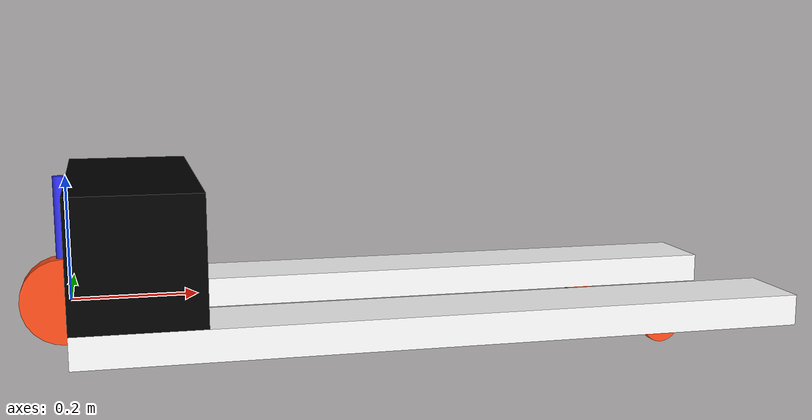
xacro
<?xml version="1.0"?>
<robot xmlns:xacro="http://www.ros.org/wiki/xacro" >

    <xacro:include filename="inertia.xacro"/>

    <material name="white">
        <color rgba="1 1 1 1" />
    </material>

    <material name="orange">
        <color rgba="1 0.3 0.1 1"/>
    </material>

    <material name="blue">
        <color rgba="0.2 0.2 1 1"/>
    </material>

    <material name="black">
        <color rgba="0 0 0 1"/>
    </material>

    <!-- BASE_FOOTPRINT LINK-->
    <joint name="base_footprint_joint" type="fixed">
        <parent link="base_link"/>
        <child link="base_footprint"/>
        <origin xyz="0 0 0" rpy="0  0 0"/>
    </joint>

    <link name="base_footprint"/>

    <!-- Ana Gövde -->
    <link name="base_link">
        <visual>
            <origin xyz="0.1 0 0.1"/>
            <geometry>
                <box size="0.2 0.50 0.2"/>
            </geometry>
            <material name="black"/>
        </visual>
        <collision>
            <origin xyz="0.1 0 0.1"/>
            <geometry>
                <box size="0.2 0.50 0.2"/>
            </geometry>
            <material name="black"/>
        </collision>
        <xacro:inertial_box mass="2.0" x="0.2" y="0.50" z="0.2">
            <origin xyz="0.1 0 0.1" rpy="0 0 0"/>
        </xacro:inertial_box>
    </link>

    <!-- Tekerlekler -->
    <link name="fork_left_wheel">
        <visual>
            <geometry>
                <cylinder radius="0.03" length="0.02"/>
            </geometry>
            <material name="orange"/>
        </visual>
        <collision>
            <geometry>
                <cylinder radius="0.03" length="0.02"/>
            </geometry>
            <material name="orange"/>
        </collision>
        <xacro:inertial_cylinder mass="0.1" length="0.02" radius="0.03">
            <origin xyz="0 0 0" rpy="0 0 0"/>
        </xacro:inertial_cylinder>
    </link>

    <link name="fork_right_wheel">
        <visual>
            <geometry>
                <cylinder radius="0.03" length="0.02"/>
            </geometry>
            <material name="orange"/>
        </visual>
        <collision>
            <geometry>
                <cylinder radius="0.03" length="0.02"/>
            </geometry>
            <material name="orange"/>
        </collision>
        <xacro:inertial_cylinder mass="0.1" length="0.02" radius="0.03">
            <origin xyz="0 0 0" rpy="0 0 0"/>
        </xacro:inertial_cylinder>
    </link>

    <link name="front_wheel">
        <visual>
            <geometry>
                <cylinder radius="0.07" length="0.04"/>
            </geometry>
            <material name="orange"/>
        </visual>
        <collision>
            <geometry>
                <cylinder radius="0.07" length="0.04"/>
            </geometry>
            <material name="orange"/>
        </collision>
        <xacro:inertial_cylinder mass="0.1" length="0.04" radius="0.07">
            <origin xyz="0 0 0" rpy="0 0 0"/>
        </xacro:inertial_cylinder>
    </link>

    <!-- Direksyon Mekanizması -->

    <link name="steering_cylinder">
        <visual>
            <geometry>
                <cylinder radius="0.01" length="0.2"/>
            </geometry>
            <material name="blue"/>
        </visual>
        <collision>
            <geometry>
                <cylinder radius="0.01" length="0.2"/>
            </geometry>
            <material name="blue"/>
        </collision>
        <xacro:inertial_cylinder mass="0.1" length="0.2" radius="0.01">
            <origin xyz="0 0 0" rpy="0 0 0"/>
        </xacro:inertial_cylinder>
    </link>

    <!-- Çatal Mekanizması -->
    <link name="left_fork">
        <visual>
            <origin xyz="0.575 0 0.025"/>
            <geometry>
                <box size="1.15 0.14 0.05"/>
            </geometry>
            <material name="white"/>
        </visual>
        <collision>
            <origin xyz="0.575 0 0.025"/>
            <geometry>
                <box size="1.15 0.14 0.05"/>
            </geometry>
            <material name="white"/>
        </collision>
        <xacro:inertial_box mass="5.0" x="1.14" y="0.14" z="0.05">
            <origin xyz="0.575 0 0.025" rpy="0 0 0"/>
        </xacro:inertial_box>
    </link>

    <link name="right_fork">
        <visual>
            <origin xyz="0.575 0 0.025"/>
            <geometry>
                <box size="1.15 0.14 0.05"/>
            </geometry>
            <material name="white"/>
        </visual>
        <collision>
            <origin xyz="0.575 0 0.025"/>
            <geometry>
                <box size="1.15 0.14 0.05"/>
            </geometry>
            <material name="white"/>
        </collision>
        <xacro:inertial_box mass="5.0" x="1.14" y="0.14" z="0.05">
            <origin xyz="0.575 0 0.025" rpy="0 0 0"/>
        </xacro:inertial_box>
    </link>

    <!-- Bağlantılar -->
    <joint name="fork_left_wheel_joint" type="continuous">
        <parent link="base_link"/>
        <child link="fork_left_wheel"/>
        <origin xyz="0.94 0.18 -0.05" rpy="-${pi/2} 0 0" />
        <axis xyz="0 0 1"/>
    </joint>

    <joint name="fork_right_wheel_joint" type="continuous">
        <parent link="base_link"/>
        <child link="fork_right_wheel"/>
        <origin xyz="0.94 -0.18 -0.05" rpy="-${pi/2} 0 0" />
        <axis xyz="0 0 -1"/>
    </joint>

    <joint name="front_wheel_joint" type="continuous">
        <parent link="steering_cylinder"/>
        <child link="front_wheel"/>
        <origin xyz="0.0 0.0 -0.1" rpy="0 -${3*pi/2} 0" />
        <axis xyz="0 0 1"/>
    </joint>

    <joint name="steering_cylinder_joint" type="revolute">
        <parent link="base_link"/>
        <child link="steering_cylinder"/>
        <origin xyz="-0.01 0.0 0.1" rpy="0 0 ${pi/2}" />
        <axis xyz="0 0 -1"/>
        <limit effort="10.0" velocity="1.0" lower="-1.5" upper="1.5"/>
    </joint>

    <joint name="left_fork_joint" type="fixed">
        <parent link="base_link"/>
        <child link="left_fork"/>
        <origin xyz="0 0.18 -0.05"/>
    </joint>

    <joint name="right_fork_joint" type="fixed">
        <parent link="base_link"/>
        <child link="right_fork"/>
        <origin xyz="0 -0.18 -0.05"/>
    </joint>

</robot>
